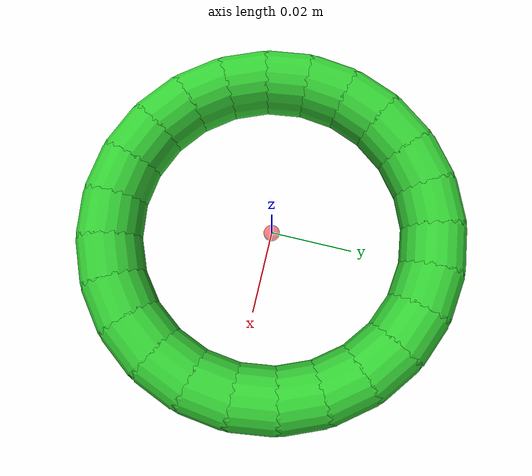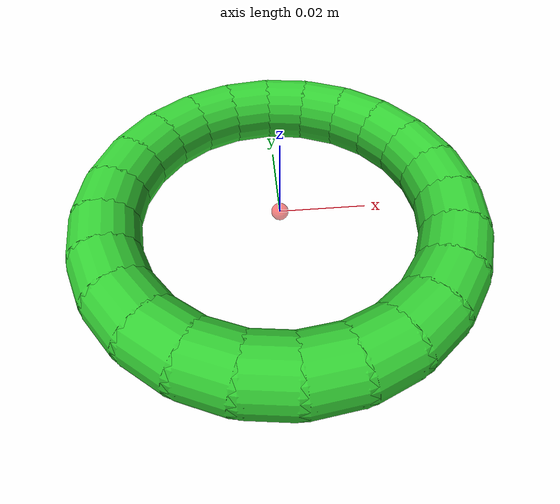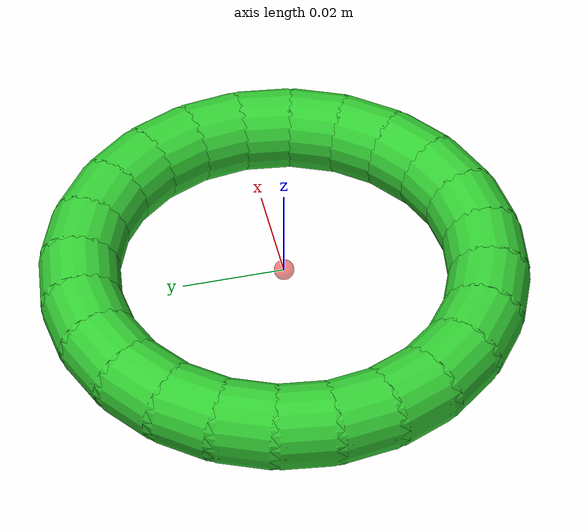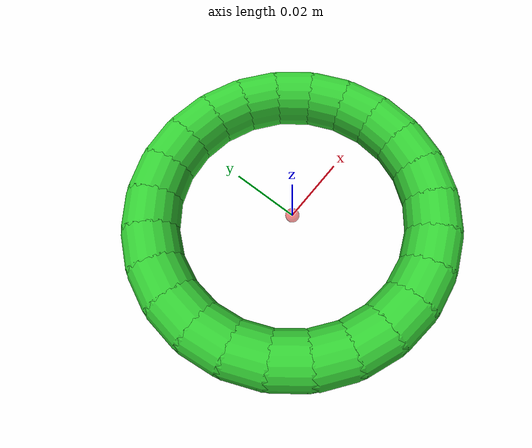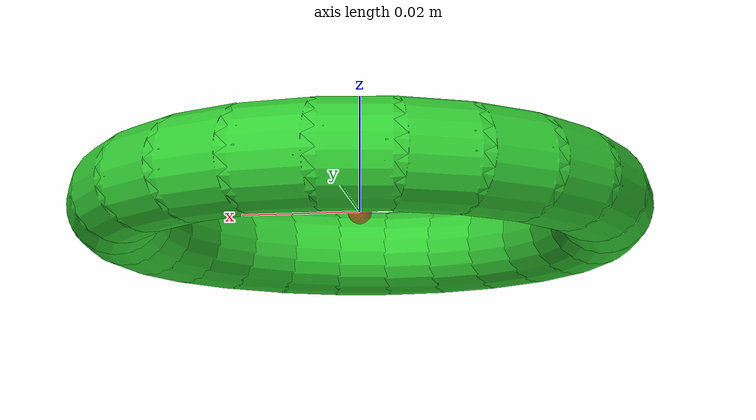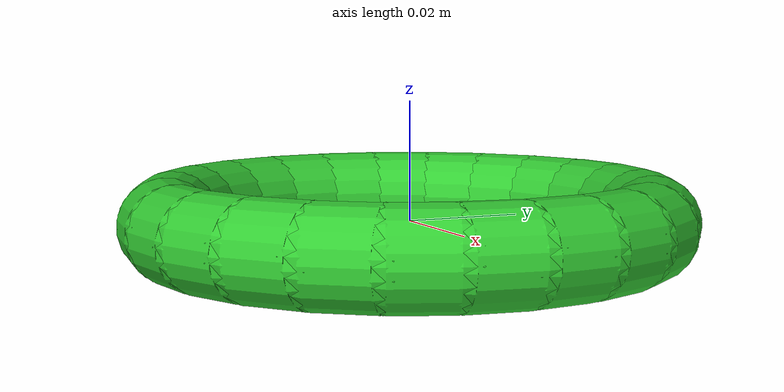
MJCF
<mujoco model="torus_ring">
  <worldbody>
    <body>
      <body name="object">
        <!-- 组合几何体生成圆环 -->
        <geom name="ring_seg_0" type="capsule" fromto="0.04 0.0 0 0.038637033051562734 0.01035276180410083 0" size="0.008" rgba="0.2 0.8 0.2 1" density="500" friction="1.5 0.005 0.0001" solref="0.001 1" solimp="0.95 0.99 0.001" group="0"/>
        <geom name="ring_seg_vis_0" type="capsule" fromto="0.04 0.0 0 0.038637033051562734 0.01035276180410083 0" size="0.008" rgba="0.2 0.8 0.2 1" contype="0" conaffinity="0" group="1"/>
        <geom name="ring_seg_1" type="capsule" fromto="0.038637033051562734 0.01035276180410083 0 0.034641016151377546 0.019999999999999997 0" size="0.008" rgba="0.2 0.8 0.2 1" density="500" friction="1.5 0.005 0.0001" solref="0.001 1" solimp="0.95 0.99 0.001" group="0"/>
        <geom name="ring_seg_vis_1" type="capsule" fromto="0.038637033051562734 0.01035276180410083 0 0.034641016151377546 0.019999999999999997 0" size="0.008" rgba="0.2 0.8 0.2 1" contype="0" conaffinity="0" group="1"/>
        <geom name="ring_seg_2" type="capsule" fromto="0.034641016151377546 0.019999999999999997 0 0.028284271247461905 0.028284271247461898 0" size="0.008" rgba="0.2 0.8 0.2 1" density="500" friction="1.5 0.005 0.0001" solref="0.001 1" solimp="0.95 0.99 0.001" group="0"/>
        <geom name="ring_seg_vis_2" type="capsule" fromto="0.034641016151377546 0.019999999999999997 0 0.028284271247461905 0.028284271247461898 0" size="0.008" rgba="0.2 0.8 0.2 1" contype="0" conaffinity="0" group="1"/>
        <geom name="ring_seg_3" type="capsule" fromto="0.028284271247461905 0.028284271247461898 0 0.020000000000000004 0.034641016151377546 0" size="0.008" rgba="0.2 0.8 0.2 1" density="500" friction="1.5 0.005 0.0001" solref="0.001 1" solimp="0.95 0.99 0.001" group="0"/>
        <geom name="ring_seg_vis_3" type="capsule" fromto="0.028284271247461905 0.028284271247461898 0 0.020000000000000004 0.034641016151377546 0" size="0.008" rgba="0.2 0.8 0.2 1" contype="0" conaffinity="0" group="1"/>
        <geom name="ring_seg_4" type="capsule" fromto="0.020000000000000004 0.034641016151377546 0 0.01035276180410083 0.038637033051562734 0" size="0.008" rgba="0.2 0.8 0.2 1" density="500" friction="1.5 0.005 0.0001" solref="0.001 1" solimp="0.95 0.99 0.001" group="0"/>
        <geom name="ring_seg_vis_4" type="capsule" fromto="0.020000000000000004 0.034641016151377546 0 0.01035276180410083 0.038637033051562734 0" size="0.008" rgba="0.2 0.8 0.2 1" contype="0" conaffinity="0" group="1"/>
        <geom name="ring_seg_5" type="capsule" fromto="0.01035276180410083 0.038637033051562734 0 2.4492935982947064e-18 0.04 0" size="0.008" rgba="0.2 0.8 0.2 1" density="500" friction="1.5 0.005 0.0001" solref="0.001 1" solimp="0.95 0.99 0.001" group="0"/>
        <geom name="ring_seg_vis_5" type="capsule" fromto="0.01035276180410083 0.038637033051562734 0 2.4492935982947064e-18 0.04 0" size="0.008" rgba="0.2 0.8 0.2 1" contype="0" conaffinity="0" group="1"/>
        <geom name="ring_seg_6" type="capsule" fromto="2.4492935982947064e-18 0.04 0 -0.010352761804100826 0.038637033051562734 0" size="0.008" rgba="0.2 0.8 0.2 1" density="500" friction="1.5 0.005 0.0001" solref="0.001 1" solimp="0.95 0.99 0.001" group="0"/>
        <geom name="ring_seg_vis_6" type="capsule" fromto="2.4492935982947064e-18 0.04 0 -0.010352761804100826 0.038637033051562734 0" size="0.008" rgba="0.2 0.8 0.2 1" contype="0" conaffinity="0" group="1"/>
        <geom name="ring_seg_7" type="capsule" fromto="-0.010352761804100826 0.038637033051562734 0 -0.01999999999999999 0.034641016151377546 0" size="0.008" rgba="0.2 0.8 0.2 1" density="500" friction="1.5 0.005 0.0001" solref="0.001 1" solimp="0.95 0.99 0.001" group="0"/>
        <geom name="ring_seg_vis_7" type="capsule" fromto="-0.010352761804100826 0.038637033051562734 0 -0.01999999999999999 0.034641016151377546 0" size="0.008" rgba="0.2 0.8 0.2 1" contype="0" conaffinity="0" group="1"/>
        <geom name="ring_seg_8" type="capsule" fromto="-0.01999999999999999 0.034641016151377546 0 -0.028284271247461898 0.028284271247461905 0" size="0.008" rgba="0.2 0.8 0.2 1" density="500" friction="1.5 0.005 0.0001" solref="0.001 1" solimp="0.95 0.99 0.001" group="0"/>
        <geom name="ring_seg_vis_8" type="capsule" fromto="-0.01999999999999999 0.034641016151377546 0 -0.028284271247461898 0.028284271247461905 0" size="0.008" rgba="0.2 0.8 0.2 1" contype="0" conaffinity="0" group="1"/>
        <geom name="ring_seg_9" type="capsule" fromto="-0.028284271247461898 0.028284271247461905 0 -0.034641016151377546 0.019999999999999997 0" size="0.008" rgba="0.2 0.8 0.2 1" density="500" friction="1.5 0.005 0.0001" solref="0.001 1" solimp="0.95 0.99 0.001" group="0"/>
        <geom name="ring_seg_vis_9" type="capsule" fromto="-0.028284271247461898 0.028284271247461905 0 -0.034641016151377546 0.019999999999999997 0" size="0.008" rgba="0.2 0.8 0.2 1" contype="0" conaffinity="0" group="1"/>
        <geom name="ring_seg_10" type="capsule" fromto="-0.034641016151377546 0.019999999999999997 0 -0.03863703305156273 0.010352761804100842 0" size="0.008" rgba="0.2 0.8 0.2 1" density="500" friction="1.5 0.005 0.0001" solref="0.001 1" solimp="0.95 0.99 0.001" group="0"/>
        <geom name="ring_seg_vis_10" type="capsule" fromto="-0.034641016151377546 0.019999999999999997 0 -0.03863703305156273 0.010352761804100842 0" size="0.008" rgba="0.2 0.8 0.2 1" contype="0" conaffinity="0" group="1"/>
        <geom name="ring_seg_11" type="capsule" fromto="-0.03863703305156273 0.010352761804100842 0 -0.04 4.898587196589413e-18 0" size="0.008" rgba="0.2 0.8 0.2 1" density="500" friction="1.5 0.005 0.0001" solref="0.001 1" solimp="0.95 0.99 0.001" group="0"/>
        <geom name="ring_seg_vis_11" type="capsule" fromto="-0.03863703305156273 0.010352761804100842 0 -0.04 4.898587196589413e-18 0" size="0.008" rgba="0.2 0.8 0.2 1" contype="0" conaffinity="0" group="1"/>
        <geom name="ring_seg_12" type="capsule" fromto="-0.04 4.898587196589413e-18 0 -0.038637033051562734 -0.010352761804100831 0" size="0.008" rgba="0.2 0.8 0.2 1" density="500" friction="1.5 0.005 0.0001" solref="0.001 1" solimp="0.95 0.99 0.001" group="0"/>
        <geom name="ring_seg_vis_12" type="capsule" fromto="-0.04 4.898587196589413e-18 0 -0.038637033051562734 -0.010352761804100831 0" size="0.008" rgba="0.2 0.8 0.2 1" contype="0" conaffinity="0" group="1"/>
        <geom name="ring_seg_13" type="capsule" fromto="-0.038637033051562734 -0.010352761804100831 0 -0.03464101615137755 -0.01999999999999999 0" size="0.008" rgba="0.2 0.8 0.2 1" density="500" friction="1.5 0.005 0.0001" solref="0.001 1" solimp="0.95 0.99 0.001" group="0"/>
        <geom name="ring_seg_vis_13" type="capsule" fromto="-0.038637033051562734 -0.010352761804100831 0 -0.03464101615137755 -0.01999999999999999 0" size="0.008" rgba="0.2 0.8 0.2 1" contype="0" conaffinity="0" group="1"/>
        <geom name="ring_seg_14" type="capsule" fromto="-0.03464101615137755 -0.01999999999999999 0 -0.028284271247461915 -0.028284271247461884 0" size="0.008" rgba="0.2 0.8 0.2 1" density="500" friction="1.5 0.005 0.0001" solref="0.001 1" solimp="0.95 0.99 0.001" group="0"/>
        <geom name="ring_seg_vis_14" type="capsule" fromto="-0.03464101615137755 -0.01999999999999999 0 -0.028284271247461915 -0.028284271247461884 0" size="0.008" rgba="0.2 0.8 0.2 1" contype="0" conaffinity="0" group="1"/>
        <geom name="ring_seg_15" type="capsule" fromto="-0.028284271247461915 -0.028284271247461884 0 -0.020000000000000018 -0.03464101615137754 0" size="0.008" rgba="0.2 0.8 0.2 1" density="500" friction="1.5 0.005 0.0001" solref="0.001 1" solimp="0.95 0.99 0.001" group="0"/>
        <geom name="ring_seg_vis_15" type="capsule" fromto="-0.028284271247461915 -0.028284271247461884 0 -0.020000000000000018 -0.03464101615137754 0" size="0.008" rgba="0.2 0.8 0.2 1" contype="0" conaffinity="0" group="1"/>
        <geom name="ring_seg_16" type="capsule" fromto="-0.020000000000000018 -0.03464101615137754 0 -0.010352761804100826 -0.038637033051562734 0" size="0.008" rgba="0.2 0.8 0.2 1" density="500" friction="1.5 0.005 0.0001" solref="0.001 1" solimp="0.95 0.99 0.001" group="0"/>
        <geom name="ring_seg_vis_16" type="capsule" fromto="-0.020000000000000018 -0.03464101615137754 0 -0.010352761804100826 -0.038637033051562734 0" size="0.008" rgba="0.2 0.8 0.2 1" contype="0" conaffinity="0" group="1"/>
        <geom name="ring_seg_17" type="capsule" fromto="-0.010352761804100826 -0.038637033051562734 0 -7.347880794884118e-18 -0.04 0" size="0.008" rgba="0.2 0.8 0.2 1" density="500" friction="1.5 0.005 0.0001" solref="0.001 1" solimp="0.95 0.99 0.001" group="0"/>
        <geom name="ring_seg_vis_17" type="capsule" fromto="-0.010352761804100826 -0.038637033051562734 0 -7.347880794884118e-18 -0.04 0" size="0.008" rgba="0.2 0.8 0.2 1" contype="0" conaffinity="0" group="1"/>
        <geom name="ring_seg_18" type="capsule" fromto="-7.347880794884118e-18 -0.04 0 0.010352761804100812 -0.038637033051562734 0" size="0.008" rgba="0.2 0.8 0.2 1" density="500" friction="1.5 0.005 0.0001" solref="0.001 1" solimp="0.95 0.99 0.001" group="0"/>
        <geom name="ring_seg_vis_18" type="capsule" fromto="-7.347880794884118e-18 -0.04 0 0.010352761804100812 -0.038637033051562734 0" size="0.008" rgba="0.2 0.8 0.2 1" contype="0" conaffinity="0" group="1"/>
        <geom name="ring_seg_19" type="capsule" fromto="0.010352761804100812 -0.038637033051562734 0 0.020000000000000004 -0.034641016151377546 0" size="0.008" rgba="0.2 0.8 0.2 1" density="500" friction="1.5 0.005 0.0001" solref="0.001 1" solimp="0.95 0.99 0.001" group="0"/>
        <geom name="ring_seg_vis_19" type="capsule" fromto="0.010352761804100812 -0.038637033051562734 0 0.020000000000000004 -0.034641016151377546 0" size="0.008" rgba="0.2 0.8 0.2 1" contype="0" conaffinity="0" group="1"/>
        <geom name="ring_seg_20" type="capsule" fromto="0.020000000000000004 -0.034641016151377546 0 0.028284271247461894 -0.02828427124746191 0" size="0.008" rgba="0.2 0.8 0.2 1" density="500" friction="1.5 0.005 0.0001" solref="0.001 1" solimp="0.95 0.99 0.001" group="0"/>
        <geom name="ring_seg_vis_20" type="capsule" fromto="0.020000000000000004 -0.034641016151377546 0 0.028284271247461894 -0.02828427124746191 0" size="0.008" rgba="0.2 0.8 0.2 1" contype="0" conaffinity="0" group="1"/>
        <geom name="ring_seg_21" type="capsule" fromto="0.028284271247461894 -0.02828427124746191 0 0.03464101615137754 -0.020000000000000018 0" size="0.008" rgba="0.2 0.8 0.2 1" density="500" friction="1.5 0.005 0.0001" solref="0.001 1" solimp="0.95 0.99 0.001" group="0"/>
        <geom name="ring_seg_vis_21" type="capsule" fromto="0.028284271247461894 -0.02828427124746191 0 0.03464101615137754 -0.020000000000000018 0" size="0.008" rgba="0.2 0.8 0.2 1" contype="0" conaffinity="0" group="1"/>
        <geom name="ring_seg_22" type="capsule" fromto="0.03464101615137754 -0.020000000000000018 0 0.03863703305156273 -0.010352761804100863 0" size="0.008" rgba="0.2 0.8 0.2 1" density="500" friction="1.5 0.005 0.0001" solref="0.001 1" solimp="0.95 0.99 0.001" group="0"/>
        <geom name="ring_seg_vis_22" type="capsule" fromto="0.03464101615137754 -0.020000000000000018 0 0.03863703305156273 -0.010352761804100863 0" size="0.008" rgba="0.2 0.8 0.2 1" contype="0" conaffinity="0" group="1"/>
        <geom name="ring_seg_23" type="capsule" fromto="0.03863703305156273 -0.010352761804100863 0 0.04 0.0 0" size="0.008" rgba="0.2 0.8 0.2 1" density="500" friction="1.5 0.005 0.0001" solref="0.001 1" solimp="0.95 0.99 0.001" group="0"/>
        <geom name="ring_seg_vis_23" type="capsule" fromto="0.03863703305156273 -0.010352761804100863 0 0.04 0.0 0" size="0.008" rgba="0.2 0.8 0.2 1" contype="0" conaffinity="0" group="1"/>

        <!-- Sites -->
        <!-- bottom_site 用于抓取逻辑，放在环的一侧实体上 -->
        <site name="bottom_site" pos="0.04 0 -0.008" size="0.002" rgba="0 0 0 0"/>
        <site name="top_site" pos="0.04 0 0.008" size="0.002" rgba="0 0 0 0"/>
        <!-- center_site 用于判断圆环是否套进了杆子 (位于圆心) -->
        <site name="center_site" pos="0 0 0" size="0.002" rgba="1 0 0 0.5"/>
      </body>
    </body>
  </worldbody>
</mujoco>
